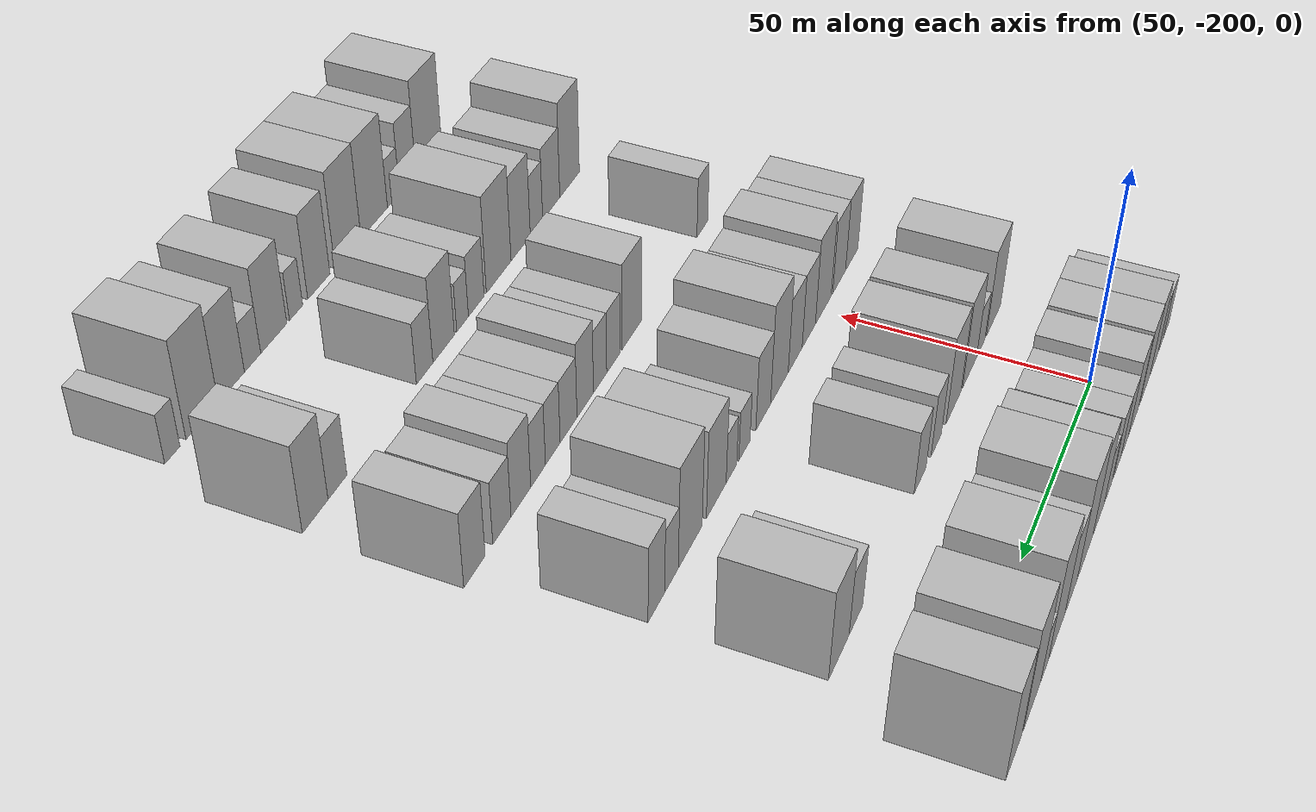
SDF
<sdf version="1.6">
 <world name="default">
  <model name="building_35">
   <static>1</static>
   <pose>50.0000 -221.0468 0 0.000000 0.000000 0.000000</pose>
   <link name="link">
    <pose>0 0 6.00 0 0 0</pose>
    <collision name="collision"><geometry><box><size>20.0000 5.5912 12.0000</size></box></geometry></collision>
    <visual name="visual">
     <cast_shadows>0</cast_shadows>
     <geometry><box><size>20.0000 5.5912 12.0000</size></box></geometry>
     <material>
      <script>
       <uri>model://HANNAS_wall/materials/scripts</uri>
       <uri>model://HANNAS_wall/materials/textures</uri>
       <name>vrc/HANNAS_wall</name>
      </script>
     </material>
    </visual>
   </link>
  </model>
  <model name="building_36">
   <static>1</static>
   <pose>50.0000 -215.8439 0 0.000000 0.000000 0.000000</pose>
   <link name="link">
    <pose>0 0 6.00 0 0 0</pose>
    <collision name="collision"><geometry><box><size>20.0000 4.8145 12.0000</size></box></geometry></collision>
    <visual name="visual">
     <cast_shadows>0</cast_shadows>
     <geometry><box><size>20.0000 4.8145 12.0000</size></box></geometry>
     <material>
      <script>
       <uri>model://HANNAS_wall/materials/scripts</uri>
       <uri>model://HANNAS_wall/materials/textures</uri>
       <name>vrc/HANNAS_wall</name>
      </script>
     </material>
    </visual>
   </link>
  </model>
  <model name="building_37">
   <static>1</static>
   <pose>50.0000 -209.7574 0 0.000000 0.000000 0.000000</pose>
   <link name="link">
    <pose>0 0 9.00 0 0 0</pose>
    <collision name="collision"><geometry><box><size>20.0000 7.3586 18.0000</size></box></geometry></collision>
    <visual name="visual">
     <cast_shadows>0</cast_shadows>
     <geometry><box><size>20.0000 7.3586 18.0000</size></box></geometry>
     <material>
      <script>
       <uri>model://HANNAS_wall/materials/scripts</uri>
       <uri>model://HANNAS_wall/materials/textures</uri>
       <name>vrc/HANNAS_wall</name>
      </script>
     </material>
    </visual>
   </link>
  </model>
  <model name="building_38">
   <static>1</static>
   <pose>50.0000 -201.6873 0 0.000000 0.000000 0.000000</pose>
   <link name="link">
    <pose>0 0 9.00 0 0 0</pose>
    <collision name="collision"><geometry><box><size>20.0000 8.7816 18.0000</size></box></geometry></collision>
    <visual name="visual">
     <cast_shadows>0</cast_shadows>
     <geometry><box><size>20.0000 8.7816 18.0000</size></box></geometry>
     <material>
      <script>
       <uri>model://HANNAS_wall/materials/scripts</uri>
       <uri>model://HANNAS_wall/materials/textures</uri>
       <name>vrc/HANNAS_wall</name>
      </script>
     </material>
    </visual>
   </link>
  </model>
  <model name="building_39">
   <static>1</static>
   <pose>50.0000 -192.1704 0 0.000000 0.000000 0.000000</pose>
   <link name="link">
    <pose>0 0 9.00 0 0 0</pose>
    <collision name="collision"><geometry><box><size>20.0000 8.2521 18.0000</size></box></geometry></collision>
    <visual name="visual">
     <cast_shadows>0</cast_shadows>
     <geometry><box><size>20.0000 8.2521 18.0000</size></box></geometry>
     <material>
      <script>
       <uri>model://HANNAS_wall/materials/scripts</uri>
       <uri>model://HANNAS_wall/materials/textures</uri>
       <name>vrc/HANNAS_wall</name>
      </script>
     </material>
    </visual>
   </link>
  </model>
  <model name="building_40">
   <static>1</static>
   <pose>50.0000 -184.9374 0 0.000000 0.000000 0.000000</pose>
   <link name="link">
    <pose>0 0 7.50 0 0 0</pose>
    <collision name="collision"><geometry><box><size>20.0000 6.2139 15.0000</size></box></geometry></collision>
    <visual name="visual">
     <cast_shadows>0</cast_shadows>
     <geometry><box><size>20.0000 6.2139 15.0000</size></box></geometry>
     <material>
      <script>
       <uri>model://HANNAS_wall/materials/scripts</uri>
       <uri>model://HANNAS_wall/materials/textures</uri>
       <name>vrc/HANNAS_wall</name>
      </script>
     </material>
    </visual>
   </link>
  </model>
  <model name="building_41">
   <static>1</static>
   <pose>50.0000 -178.7144 0 0.000000 0.000000 0.000000</pose>
   <link name="link">
    <pose>0 0 7.50 0 0 0</pose>
    <collision name="collision"><geometry><box><size>20.0000 6.2321 15.0000</size></box></geometry></collision>
    <visual name="visual">
     <cast_shadows>0</cast_shadows>
     <geometry><box><size>20.0000 6.2321 15.0000</size></box></geometry>
     <material>
      <script>
       <uri>model://HANNAS_wall/materials/scripts</uri>
       <uri>model://HANNAS_wall/materials/textures</uri>
       <name>vrc/HANNAS_wall</name>
      </script>
     </material>
    </visual>
   </link>
  </model>
  <model name="building_42">
   <static>1</static>
   <pose>50.0000 -171.6331 0 0.000000 0.000000 0.000000</pose>
   <link name="link">
    <pose>0 0 6.00 0 0 0</pose>
    <collision name="collision"><geometry><box><size>20.0000 5.9306 12.0000</size></box></geometry></collision>
    <visual name="visual">
     <cast_shadows>0</cast_shadows>
     <geometry><box><size>20.0000 5.9306 12.0000</size></box></geometry>
     <material>
      <script>
       <uri>model://HANNAS_wall/materials/scripts</uri>
       <uri>model://HANNAS_wall/materials/textures</uri>
       <name>vrc/HANNAS_wall</name>
      </script>
     </material>
    </visual>
   </link>
  </model>
  <model name="building_43">
   <static>1</static>
   <pose>50.0000 -164.3711 0 0.000000 0.000000 0.000000</pose>
   <link name="link">
    <pose>0 0 10.50 0 0 0</pose>
    <collision name="collision"><geometry><box><size>20.0000 8.5934 21.0000</size></box></geometry></collision>
    <visual name="visual">
     <cast_shadows>0</cast_shadows>
     <geometry><box><size>20.0000 8.5934 21.0000</size></box></geometry>
     <material>
      <script>
       <uri>model://HANNAS_wall/materials/scripts</uri>
       <uri>model://HANNAS_wall/materials/textures</uri>
       <name>vrc/HANNAS_wall</name>
      </script>
     </material>
    </visual>
   </link>
  </model>
  <model name="building_44">
   <static>1</static>
   <pose>50.0000 -154.4424 0 0.000000 0.000000 0.000000</pose>
   <link name="link">
    <pose>0 0 12.00 0 0 0</pose>
    <collision name="collision"><geometry><box><size>20.0000 11.2641 24.0000</size></box></geometry></collision>
    <visual name="visual">
     <cast_shadows>0</cast_shadows>
     <geometry><box><size>20.0000 11.2641 24.0000</size></box></geometry>
     <material>
      <script>
       <uri>model://HANNAS_wall/materials/scripts</uri>
       <uri>model://HANNAS_wall/materials/textures</uri>
       <name>vrc/HANNAS_wall</name>
      </script>
     </material>
    </visual>
   </link>
  </model>
  <model name="building_45">
   <static>1</static>
   <pose>50.0000 -144.5489 0 0.000000 0.000000 0.000000</pose>
   <link name="link">
    <pose>0 0 9.00 0 0 0</pose>
    <collision name="collision"><geometry><box><size>20.0000 8.5229 18.0000</size></box></geometry></collision>
    <visual name="visual">
     <cast_shadows>0</cast_shadows>
     <geometry><box><size>20.0000 8.5229 18.0000</size></box></geometry>
     <material>
      <script>
       <uri>model://HANNAS_wall/materials/scripts</uri>
       <uri>model://HANNAS_wall/materials/textures</uri>
       <name>vrc/HANNAS_wall</name>
      </script>
     </material>
    </visual>
   </link>
  </model>
  <model name="building_46">
   <static>1</static>
   <pose>50.0000 -134.7426 0 0.000000 0.000000 0.000000</pose>
   <link name="link">
    <pose>0 0 12.00 0 0 0</pose>
    <collision name="collision"><geometry><box><size>20.0000 11.0898 24.0000</size></box></geometry></collision>
    <visual name="visual">
     <cast_shadows>0</cast_shadows>
     <geometry><box><size>20.0000 11.0898 24.0000</size></box></geometry>
     <material>
      <script>
       <uri>model://HANNAS_wall/materials/scripts</uri>
       <uri>model://HANNAS_wall/materials/textures</uri>
       <name>vrc/HANNAS_wall</name>
      </script>
     </material>
    </visual>
   </link>
  </model>
  <model name="building_47">
   <static>1</static>
   <pose>50.0000 -126.7823 0 0.000000 0.000000 0.000000</pose>
   <link name="link">
    <pose>0 0 6.00 0 0 0</pose>
    <collision name="collision"><geometry><box><size>20.0000 4.8309 12.0000</size></box></geometry></collision>
    <visual name="visual">
     <cast_shadows>0</cast_shadows>
     <geometry><box><size>20.0000 4.8309 12.0000</size></box></geometry>
     <material>
      <script>
       <uri>model://HANNAS_wall/materials/scripts</uri>
       <uri>model://HANNAS_wall/materials/textures</uri>
       <name>vrc/HANNAS_wall</name>
      </script>
     </material>
    </visual>
   </link>
  </model>
  <model name="building_48">
   <static>1</static>
   <pose>50.0000 -118.9550 0 0.000000 0.000000 0.000000</pose>
   <link name="link">
    <pose>0 0 12.00 0 0 0</pose>
    <collision name="collision"><geometry><box><size>20.0000 10.8237 24.0000</size></box></geometry></collision>
    <visual name="visual">
     <cast_shadows>0</cast_shadows>
     <geometry><box><size>20.0000 10.8237 24.0000</size></box></geometry>
     <material>
      <script>
       <uri>model://HANNAS_wall/materials/scripts</uri>
       <uri>model://HANNAS_wall/materials/textures</uri>
       <name>vrc/HANNAS_wall</name>
      </script>
     </material>
    </visual>
   </link>
  </model>
  <model name="building_49">
   <static>1</static>
   <pose>50.0000 -107.7696 0 0.000000 0.000000 0.000000</pose>
   <link name="link">
    <pose>0 0 10.50 0 0 0</pose>
    <collision name="collision"><geometry><box><size>20.0000 9.5471 21.0000</size></box></geometry></collision>
    <visual name="visual">
     <cast_shadows>0</cast_shadows>
     <geometry><box><size>20.0000 9.5471 21.0000</size></box></geometry>
     <material>
      <script>
       <uri>model://HANNAS_wall/materials/scripts</uri>
       <uri>model://HANNAS_wall/materials/textures</uri>
       <name>vrc/HANNAS_wall</name>
      </script>
     </material>
    </visual>
   </link>
  </model>
  <model name="building_161">
   <static>1</static>
   <pose>82.0000 -210.3551 0 0.000000 0.000000 0.000000</pose>
   <link name="link">
    <pose>0 0 10.50 0 0 0</pose>
    <collision name="collision"><geometry><box><size>20.0000 10.3191 21.0000</size></box></geometry></collision>
    <visual name="visual">
     <cast_shadows>0</cast_shadows>
     <geometry><box><size>20.0000 10.3191 21.0000</size></box></geometry>
     <material>
      <script>
       <uri>model://HANNAS_wall/materials/scripts</uri>
       <uri>model://HANNAS_wall/materials/textures</uri>
       <name>vrc/HANNAS_wall</name>
      </script>
     </material>
    </visual>
   </link>
  </model>
  <model name="building_162">
   <static>1</static>
   <pose>82.0000 -201.2394 0 0.000000 0.000000 0.000000</pose>
   <link name="link">
    <pose>0 0 6.00 0 0 0</pose>
    <collision name="collision"><geometry><box><size>20.0000 5.9122 12.0000</size></box></geometry></collision>
    <visual name="visual">
     <cast_shadows>0</cast_shadows>
     <geometry><box><size>20.0000 5.9122 12.0000</size></box></geometry>
     <material>
      <script>
       <uri>model://HANNAS_wall/materials/scripts</uri>
       <uri>model://HANNAS_wall/materials/textures</uri>
       <name>vrc/HANNAS_wall</name>
      </script>
     </material>
    </visual>
   </link>
  </model>
  <model name="building_163">
   <static>1</static>
   <pose>82.0000 -193.4736 0 0.000000 0.000000 0.000000</pose>
   <link name="link">
    <pose>0 0 10.50 0 0 0</pose>
    <collision name="collision"><geometry><box><size>20.0000 9.6196 21.0000</size></box></geometry></collision>
    <visual name="visual">
     <cast_shadows>0</cast_shadows>
     <geometry><box><size>20.0000 9.6196 21.0000</size></box></geometry>
     <material>
      <script>
       <uri>model://HANNAS_wall/materials/scripts</uri>
       <uri>model://HANNAS_wall/materials/textures</uri>
       <name>vrc/HANNAS_wall</name>
      </script>
     </material>
    </visual>
   </link>
  </model>
  <model name="building_164">
   <static>1</static>
   <pose>82.0000 -182.7135 0 0.000000 0.000000 0.000000</pose>
   <link name="link">
    <pose>0 0 10.50 0 0 0</pose>
    <collision name="collision"><geometry><box><size>20.0000 9.9006 21.0000</size></box></geometry></collision>
    <visual name="visual">
     <cast_shadows>0</cast_shadows>
     <geometry><box><size>20.0000 9.9006 21.0000</size></box></geometry>
     <material>
      <script>
       <uri>model://HANNAS_wall/materials/scripts</uri>
       <uri>model://HANNAS_wall/materials/textures</uri>
       <name>vrc/HANNAS_wall</name>
      </script>
     </material>
    </visual>
   </link>
  </model>
  <model name="building_165">
   <static>1</static>
   <pose>82.0000 -171.4814 0 0.000000 0.000000 0.000000</pose>
   <link name="link">
    <pose>0 0 7.50 0 0 0</pose>
    <collision name="collision"><geometry><box><size>20.0000 6.5635 15.0000</size></box></geometry></collision>
    <visual name="visual">
     <cast_shadows>0</cast_shadows>
     <geometry><box><size>20.0000 6.5635 15.0000</size></box></geometry>
     <material>
      <script>
       <uri>model://HANNAS_wall/materials/scripts</uri>
       <uri>model://HANNAS_wall/materials/textures</uri>
       <name>vrc/HANNAS_wall</name>
      </script>
     </material>
    </visual>
   </link>
  </model>
  <model name="building_166">
   <static>1</static>
   <pose>82.0000 -161.5346 0 0.000000 0.000000 0.000000</pose>
   <link name="link">
    <pose>0 0 7.50 0 0 0</pose>
    <collision name="collision"><geometry><box><size>20.0000 7.3302 15.0000</size></box></geometry></collision>
    <visual name="visual">
     <cast_shadows>0</cast_shadows>
     <geometry><box><size>20.0000 7.3302 15.0000</size></box></geometry>
     <material>
      <script>
       <uri>model://HANNAS_wall/materials/scripts</uri>
       <uri>model://HANNAS_wall/materials/textures</uri>
       <name>vrc/HANNAS_wall</name>
      </script>
     </material>
    </visual>
   </link>
  </model>
  <model name="building_167">
   <static>1</static>
   <pose>82.0000 -125.1400 0 0.000000 0.000000 0.000000</pose>
   <link name="link">
    <pose>0 0 7.50 0 0 0</pose>
    <collision name="collision"><geometry><box><size>20.0000 7.1531 15.0000</size></box></geometry></collision>
    <visual name="visual">
     <cast_shadows>0</cast_shadows>
     <geometry><box><size>20.0000 7.1531 15.0000</size></box></geometry>
     <material>
      <script>
       <uri>model://HANNAS_wall/materials/scripts</uri>
       <uri>model://HANNAS_wall/materials/textures</uri>
       <name>vrc/HANNAS_wall</name>
      </script>
     </material>
    </visual>
   </link>
  </model>
  <model name="building_168">
   <static>1</static>
   <pose>82.0000 -116.3396 0 0.000000 0.000000 0.000000</pose>
   <link name="link">
    <pose>0 0 10.50 0 0 0</pose>
    <collision name="collision"><geometry><box><size>20.0000 10.4476 21.0000</size></box></geometry></collision>
    <visual name="visual">
     <cast_shadows>0</cast_shadows>
     <geometry><box><size>20.0000 10.4476 21.0000</size></box></geometry>
     <material>
      <script>
       <uri>model://HANNAS_wall/materials/scripts</uri>
       <uri>model://HANNAS_wall/materials/textures</uri>
       <name>vrc/HANNAS_wall</name>
      </script>
     </material>
    </visual>
   </link>
  </model>
  <model name="building_272">
   <static>1</static>
   <pose>114.0000 -217.8132 0 0.000000 0.000000 0.000000</pose>
   <link name="link">
    <pose>0 0 9.00 0 0 0</pose>
    <collision name="collision"><geometry><box><size>20.0000 7.8321 18.0000</size></box></geometry></collision>
    <visual name="visual">
     <cast_shadows>0</cast_shadows>
     <geometry><box><size>20.0000 7.8321 18.0000</size></box></geometry>
     <material>
      <script>
       <uri>model://HANNAS_wall/materials/scripts</uri>
       <uri>model://HANNAS_wall/materials/textures</uri>
       <name>vrc/HANNAS_wall</name>
      </script>
     </material>
    </visual>
   </link>
  </model>
  <model name="building_273">
   <static>1</static>
   <pose>114.0000 -209.9239 0 0.000000 0.000000 0.000000</pose>
   <link name="link">
    <pose>0 0 9.00 0 0 0</pose>
    <collision name="collision"><geometry><box><size>20.0000 7.9464 18.0000</size></box></geometry></collision>
    <visual name="visual">
     <cast_shadows>0</cast_shadows>
     <geometry><box><size>20.0000 7.9464 18.0000</size></box></geometry>
     <material>
      <script>
       <uri>model://HANNAS_wall/materials/scripts</uri>
       <uri>model://HANNAS_wall/materials/textures</uri>
       <name>vrc/HANNAS_wall</name>
      </script>
     </material>
    </visual>
   </link>
  </model>
  <model name="building_274">
   <static>1</static>
   <pose>114.0000 -200.2239 0 0.000000 0.000000 0.000000</pose>
   <link name="link">
    <pose>0 0 10.50 0 0 0</pose>
    <collision name="collision"><geometry><box><size>20.0000 9.4536 21.0000</size></box></geometry></collision>
    <visual name="visual">
     <cast_shadows>0</cast_shadows>
     <geometry><box><size>20.0000 9.4536 21.0000</size></box></geometry>
     <material>
      <script>
       <uri>model://HANNAS_wall/materials/scripts</uri>
       <uri>model://HANNAS_wall/materials/textures</uri>
       <name>vrc/HANNAS_wall</name>
      </script>
     </material>
    </visual>
   </link>
  </model>
  <model name="building_275">
   <static>1</static>
   <pose>114.0000 -191.6188 0 0.000000 0.000000 0.000000</pose>
   <link name="link">
    <pose>0 0 9.00 0 0 0</pose>
    <collision name="collision"><geometry><box><size>20.0000 7.7567 18.0000</size></box></geometry></collision>
    <visual name="visual">
     <cast_shadows>0</cast_shadows>
     <geometry><box><size>20.0000 7.7567 18.0000</size></box></geometry>
     <material>
      <script>
       <uri>model://HANNAS_wall/materials/scripts</uri>
       <uri>model://HANNAS_wall/materials/textures</uri>
       <name>vrc/HANNAS_wall</name>
      </script>
     </material>
    </visual>
   </link>
  </model>
  <model name="building_276">
   <static>1</static>
   <pose>114.0000 -183.7660 0 0.000000 0.000000 0.000000</pose>
   <link name="link">
    <pose>0 0 9.00 0 0 0</pose>
    <collision name="collision"><geometry><box><size>20.0000 7.9490 18.0000</size></box></geometry></collision>
    <visual name="visual">
     <cast_shadows>0</cast_shadows>
     <geometry><box><size>20.0000 7.9490 18.0000</size></box></geometry>
     <material>
      <script>
       <uri>model://HANNAS_wall/materials/scripts</uri>
       <uri>model://HANNAS_wall/materials/textures</uri>
       <name>vrc/HANNAS_wall</name>
      </script>
     </material>
    </visual>
   </link>
  </model>
  <model name="building_277">
   <static>1</static>
   <pose>114.0000 -174.9407 0 0.000000 0.000000 0.000000</pose>
   <link name="link">
    <pose>0 0 12.00 0 0 0</pose>
    <collision name="collision"><geometry><box><size>20.0000 9.7017 24.0000</size></box></geometry></collision>
    <visual name="visual">
     <cast_shadows>0</cast_shadows>
     <geometry><box><size>20.0000 9.7017 24.0000</size></box></geometry>
     <material>
      <script>
       <uri>model://HANNAS_wall/materials/scripts</uri>
       <uri>model://HANNAS_wall/materials/textures</uri>
       <name>vrc/HANNAS_wall</name>
      </script>
     </material>
    </visual>
   </link>
  </model>
  <model name="building_278">
   <static>1</static>
   <pose>114.0000 -166.1521 0 0.000000 0.000000 0.000000</pose>
   <link name="link">
    <pose>0 0 9.00 0 0 0</pose>
    <collision name="collision"><geometry><box><size>20.0000 7.8755 18.0000</size></box></geometry></collision>
    <visual name="visual">
     <cast_shadows>0</cast_shadows>
     <geometry><box><size>20.0000 7.8755 18.0000</size></box></geometry>
     <material>
      <script>
       <uri>model://HANNAS_wall/materials/scripts</uri>
       <uri>model://HANNAS_wall/materials/textures</uri>
       <name>vrc/HANNAS_wall</name>
      </script>
     </material>
    </visual>
   </link>
  </model>
  <model name="building_279">
   <static>1</static>
   <pose>114.0000 -156.3074 0 0.000000 0.000000 0.000000</pose>
   <link name="link">
    <pose>0 0 6.00 0 0 0</pose>
    <collision name="collision"><geometry><box><size>20.0000 5.8138 12.0000</size></box></geometry></collision>
    <visual name="visual">
     <cast_shadows>0</cast_shadows>
     <geometry><box><size>20.0000 5.8138 12.0000</size></box></geometry>
     <material>
      <script>
       <uri>model://HANNAS_wall/materials/scripts</uri>
       <uri>model://HANNAS_wall/materials/textures</uri>
       <name>vrc/HANNAS_wall</name>
      </script>
     </material>
    </visual>
   </link>
  </model>
  <model name="building_280">
   <static>1</static>
   <pose>114.0000 -149.7350 0 0.000000 0.000000 0.000000</pose>
   <link name="link">
    <pose>0 0 6.00 0 0 0</pose>
    <collision name="collision"><geometry><box><size>20.0000 5.3311 12.0000</size></box></geometry></collision>
    <visual name="visual">
     <cast_shadows>0</cast_shadows>
     <geometry><box><size>20.0000 5.3311 12.0000</size></box></geometry>
     <material>
      <script>
       <uri>model://HANNAS_wall/materials/scripts</uri>
       <uri>model://HANNAS_wall/materials/textures</uri>
       <name>vrc/HANNAS_wall</name>
      </script>
     </material>
    </visual>
   </link>
  </model>
  <model name="building_281">
   <static>1</static>
   <pose>114.0000 -142.2598 0 0.000000 0.000000 0.000000</pose>
   <link name="link">
    <pose>0 0 10.50 0 0 0</pose>
    <collision name="collision"><geometry><box><size>20.0000 9.6193 21.0000</size></box></geometry></collision>
    <visual name="visual">
     <cast_shadows>0</cast_shadows>
     <geometry><box><size>20.0000 9.6193 21.0000</size></box></geometry>
     <material>
      <script>
       <uri>model://HANNAS_wall/materials/scripts</uri>
       <uri>model://HANNAS_wall/materials/textures</uri>
       <name>vrc/HANNAS_wall</name>
      </script>
     </material>
    </visual>
   </link>
  </model>
  <model name="building_282">
   <static>1</static>
   <pose>114.0000 -129.9296 0 0.000000 0.000000 0.000000</pose>
   <link name="link">
    <pose>0 0 12.00 0 0 0</pose>
    <collision name="collision"><geometry><box><size>20.0000 11.0411 24.0000</size></box></geometry></collision>
    <visual name="visual">
     <cast_shadows>0</cast_shadows>
     <geometry><box><size>20.0000 11.0411 24.0000</size></box></geometry>
     <material>
      <script>
       <uri>model://HANNAS_wall/materials/scripts</uri>
       <uri>model://HANNAS_wall/materials/textures</uri>
       <name>vrc/HANNAS_wall</name>
      </script>
     </material>
    </visual>
   </link>
  </model>
  <model name="building_283">
   <static>1</static>
   <pose>114.0000 -121.3444 0 0.000000 0.000000 0.000000</pose>
   <link name="link">
    <pose>0 0 7.50 0 0 0</pose>
    <collision name="collision"><geometry><box><size>20.0000 6.1294 15.0000</size></box></geometry></collision>
    <visual name="visual">
     <cast_shadows>0</cast_shadows>
     <geometry><box><size>20.0000 6.1294 15.0000</size></box></geometry>
     <material>
      <script>
       <uri>model://HANNAS_wall/materials/scripts</uri>
       <uri>model://HANNAS_wall/materials/textures</uri>
       <name>vrc/HANNAS_wall</name>
      </script>
     </material>
    </visual>
   </link>
  </model>
  <model name="building_284">
   <static>1</static>
   <pose>114.0000 -114.6288 0 0.000000 0.000000 0.000000</pose>
   <link name="link">
    <pose>0 0 9.00 0 0 0</pose>
    <collision name="collision"><geometry><box><size>20.0000 7.3018 18.0000</size></box></geometry></collision>
    <visual name="visual">
     <cast_shadows>0</cast_shadows>
     <geometry><box><size>20.0000 7.3018 18.0000</size></box></geometry>
     <material>
      <script>
       <uri>model://HANNAS_wall/materials/scripts</uri>
       <uri>model://HANNAS_wall/materials/textures</uri>
       <name>vrc/HANNAS_wall</name>
      </script>
     </material>
    </visual>
   </link>
  </model>
  <model name="building_390">
   <static>1</static>
   <pose>146.0000 -215.3857 0 0.000000 0.000000 0.000000</pose>
   <link name="link">
    <pose>0 0 7.50 0 0 0</pose>
    <collision name="collision"><geometry><box><size>20.0000 6.0365 15.0000</size></box></geometry></collision>
    <visual name="visual">
     <cast_shadows>0</cast_shadows>
     <geometry><box><size>20.0000 6.0365 15.0000</size></box></geometry>
     <material>
      <script>
       <uri>model://HANNAS_wall/materials/scripts</uri>
       <uri>model://HANNAS_wall/materials/textures</uri>
       <name>vrc/HANNAS_wall</name>
      </script>
     </material>
    </visual>
   </link>
  </model>
  <model name="building_391">
   <static>1</static>
   <pose>146.0000 -178.2285 0 0.000000 0.000000 0.000000</pose>
   <link name="link">
    <pose>0 0 10.50 0 0 0</pose>
    <collision name="collision"><geometry><box><size>20.0000 9.4259 21.0000</size></box></geometry></collision>
    <visual name="visual">
     <cast_shadows>0</cast_shadows>
     <geometry><box><size>20.0000 9.4259 21.0000</size></box></geometry>
     <material>
      <script>
       <uri>model://HANNAS_wall/materials/scripts</uri>
       <uri>model://HANNAS_wall/materials/textures</uri>
       <name>vrc/HANNAS_wall</name>
      </script>
     </material>
    </visual>
   </link>
  </model>
  <model name="building_392">
   <static>1</static>
   <pose>146.0000 -169.3140 0 0.000000 0.000000 0.000000</pose>
   <link name="link">
    <pose>0 0 7.50 0 0 0</pose>
    <collision name="collision"><geometry><box><size>20.0000 6.4030 15.0000</size></box></geometry></collision>
    <visual name="visual">
     <cast_shadows>0</cast_shadows>
     <geometry><box><size>20.0000 6.4030 15.0000</size></box></geometry>
     <material>
      <script>
       <uri>model://HANNAS_wall/materials/scripts</uri>
       <uri>model://HANNAS_wall/materials/textures</uri>
       <name>vrc/HANNAS_wall</name>
      </script>
     </material>
    </visual>
   </link>
  </model>
  <model name="building_393">
   <static>1</static>
   <pose>146.0000 -163.0131 0 0.000000 0.000000 0.000000</pose>
   <link name="link">
    <pose>0 0 7.50 0 0 0</pose>
    <collision name="collision"><geometry><box><size>20.0000 6.1986 15.0000</size></box></geometry></collision>
    <visual name="visual">
     <cast_shadows>0</cast_shadows>
     <geometry><box><size>20.0000 6.1986 15.0000</size></box></geometry>
     <material>
      <script>
       <uri>model://HANNAS_wall/materials/scripts</uri>
       <uri>model://HANNAS_wall/materials/textures</uri>
       <name>vrc/HANNAS_wall</name>
      </script>
     </material>
    </visual>
   </link>
  </model>
  <model name="building_394">
   <static>1</static>
   <pose>146.0000 -156.1457 0 0.000000 0.000000 0.000000</pose>
   <link name="link">
    <pose>0 0 9.00 0 0 0</pose>
    <collision name="collision"><geometry><box><size>20.0000 7.5362 18.0000</size></box></geometry></collision>
    <visual name="visual">
     <cast_shadows>0</cast_shadows>
     <geometry><box><size>20.0000 7.5362 18.0000</size></box></geometry>
     <material>
      <script>
       <uri>model://HANNAS_wall/materials/scripts</uri>
       <uri>model://HANNAS_wall/materials/textures</uri>
       <name>vrc/HANNAS_wall</name>
      </script>
     </material>
    </visual>
   </link>
  </model>
  <model name="building_395">
   <static>1</static>
   <pose>146.0000 -148.6356 0 0.000000 0.000000 0.000000</pose>
   <link name="link">
    <pose>0 0 7.50 0 0 0</pose>
    <collision name="collision"><geometry><box><size>20.0000 7.4842 15.0000</size></box></geometry></collision>
    <visual name="visual">
     <cast_shadows>0</cast_shadows>
     <geometry><box><size>20.0000 7.4842 15.0000</size></box></geometry>
     <material>
      <script>
       <uri>model://HANNAS_wall/materials/scripts</uri>
       <uri>model://HANNAS_wall/materials/textures</uri>
       <name>vrc/HANNAS_wall</name>
      </script>
     </material>
    </visual>
   </link>
  </model>
  <model name="building_396">
   <static>1</static>
   <pose>146.0000 -141.7127 0 0.000000 0.000000 0.000000</pose>
   <link name="link">
    <pose>0 0 7.50 0 0 0</pose>
    <collision name="collision"><geometry><box><size>20.0000 6.3615 15.0000</size></box></geometry></collision>
    <visual name="visual">
     <cast_shadows>0</cast_shadows>
     <geometry><box><size>20.0000 6.3615 15.0000</size></box></geometry>
     <material>
      <script>
       <uri>model://HANNAS_wall/materials/scripts</uri>
       <uri>model://HANNAS_wall/materials/textures</uri>
       <name>vrc/HANNAS_wall</name>
      </script>
     </material>
    </visual>
   </link>
  </model>
  <model name="building_397">
   <static>1</static>
   <pose>146.0000 -135.4174 0 0.000000 0.000000 0.000000</pose>
   <link name="link">
    <pose>0 0 7.50 0 0 0</pose>
    <collision name="collision"><geometry><box><size>20.0000 6.2291 15.0000</size></box></geometry></collision>
    <visual name="visual">
     <cast_shadows>0</cast_shadows>
     <geometry><box><size>20.0000 6.2291 15.0000</size></box></geometry>
     <material>
      <script>
       <uri>model://HANNAS_wall/materials/scripts</uri>
       <uri>model://HANNAS_wall/materials/textures</uri>
       <name>vrc/HANNAS_wall</name>
      </script>
     </material>
    </visual>
   </link>
  </model>
  <model name="building_398">
   <static>1</static>
   <pose>146.0000 -128.2302 0 0.000000 0.000000 0.000000</pose>
   <link name="link">
    <pose>0 0 9.00 0 0 0</pose>
    <collision name="collision"><geometry><box><size>20.0000 8.1455 18.0000</size></box></geometry></collision>
    <visual name="visual">
     <cast_shadows>0</cast_shadows>
     <geometry><box><size>20.0000 8.1455 18.0000</size></box></geometry>
     <material>
      <script>
       <uri>model://HANNAS_wall/materials/scripts</uri>
       <uri>model://HANNAS_wall/materials/textures</uri>
       <name>vrc/HANNAS_wall</name>
      </script>
     </material>
    </visual>
   </link>
  </model>
  <model name="building_399">
   <static>1</static>
   <pose>146.0000 -120.5197 0 0.000000 0.000000 0.000000</pose>
   <link name="link">
    <pose>0 0 7.50 0 0 0</pose>
    <collision name="collision"><geometry><box><size>20.0000 7.2755 15.0000</size></box></geometry></collision>
    <visual name="visual">
     <cast_shadows>0</cast_shadows>
     <geometry><box><size>20.0000 7.2755 15.0000</size></box></geometry>
     <material>
      <script>
       <uri>model://HANNAS_wall/materials/scripts</uri>
       <uri>model://HANNAS_wall/materials/textures</uri>
       <name>vrc/HANNAS_wall</name>
      </script>
     </material>
    </visual>
   </link>
  </model>
  <model name="building_400">
   <static>1</static>
   <pose>146.0000 -109.8017 0 0.000000 0.000000 0.000000</pose>
   <link name="link">
    <pose>0 0 9.00 0 0 0</pose>
    <collision name="collision"><geometry><box><size>20.0000 8.1604 18.0000</size></box></geometry></collision>
    <visual name="visual">
     <cast_shadows>0</cast_shadows>
     <geometry><box><size>20.0000 8.1604 18.0000</size></box></geometry>
     <material>
      <script>
       <uri>model://HANNAS_wall/materials/scripts</uri>
       <uri>model://HANNAS_wall/materials/textures</uri>
       <name>vrc/HANNAS_wall</name>
      </script>
     </material>
    </visual>
   </link>
  </model>
  <model name="building_509">
   <static>1</static>
   <pose>178.0000 -218.6854 0 0.000000 0.000000 0.000000</pose>
   <link name="link">
    <pose>0 0 12.00 0 0 0</pose>
    <collision name="collision"><geometry><box><size>20.0000 10.0352 24.0000</size></box></geometry></collision>
    <visual name="visual">
     <cast_shadows>0</cast_shadows>
     <geometry><box><size>20.0000 10.0352 24.0000</size></box></geometry>
     <material>
      <script>
       <uri>model://HANNAS_wall/materials/scripts</uri>
       <uri>model://HANNAS_wall/materials/textures</uri>
       <name>vrc/HANNAS_wall</name>
      </script>
     </material>
    </visual>
   </link>
  </model>
  <model name="building_510">
   <static>1</static>
   <pose>178.0000 -209.4074 0 0.000000 0.000000 0.000000</pose>
   <link name="link">
    <pose>0 0 9.00 0 0 0</pose>
    <collision name="collision"><geometry><box><size>20.0000 8.5207 18.0000</size></box></geometry></collision>
    <visual name="visual">
     <cast_shadows>0</cast_shadows>
     <geometry><box><size>20.0000 8.5207 18.0000</size></box></geometry>
     <material>
      <script>
       <uri>model://HANNAS_wall/materials/scripts</uri>
       <uri>model://HANNAS_wall/materials/textures</uri>
       <name>vrc/HANNAS_wall</name>
      </script>
     </material>
    </visual>
   </link>
  </model>
  <model name="building_511">
   <static>1</static>
   <pose>178.0000 -202.1336 0 0.000000 0.000000 0.000000</pose>
   <link name="link">
    <pose>0 0 7.50 0 0 0</pose>
    <collision name="collision"><geometry><box><size>20.0000 6.0268 15.0000</size></box></geometry></collision>
    <visual name="visual">
     <cast_shadows>0</cast_shadows>
     <geometry><box><size>20.0000 6.0268 15.0000</size></box></geometry>
     <material>
      <script>
       <uri>model://HANNAS_wall/materials/scripts</uri>
       <uri>model://HANNAS_wall/materials/textures</uri>
       <name>vrc/HANNAS_wall</name>
      </script>
     </material>
    </visual>
   </link>
  </model>
  <model name="building_512">
   <static>1</static>
   <pose>178.0000 -194.5475 0 0.000000 0.000000 0.000000</pose>
   <link name="link">
    <pose>0 0 10.50 0 0 0</pose>
    <collision name="collision"><geometry><box><size>20.0000 9.1454 21.0000</size></box></geometry></collision>
    <visual name="visual">
     <cast_shadows>0</cast_shadows>
     <geometry><box><size>20.0000 9.1454 21.0000</size></box></geometry>
     <material>
      <script>
       <uri>model://HANNAS_wall/materials/scripts</uri>
       <uri>model://HANNAS_wall/materials/textures</uri>
       <name>vrc/HANNAS_wall</name>
      </script>
     </material>
    </visual>
   </link>
  </model>
  <model name="building_513">
   <static>1</static>
   <pose>178.0000 -184.2959 0 0.000000 0.000000 0.000000</pose>
   <link name="link">
    <pose>0 0 12.00 0 0 0</pose>
    <collision name="collision"><geometry><box><size>20.0000 11.3578 24.0000</size></box></geometry></collision>
    <visual name="visual">
     <cast_shadows>0</cast_shadows>
     <geometry><box><size>20.0000 11.3578 24.0000</size></box></geometry>
     <material>
      <script>
       <uri>model://HANNAS_wall/materials/scripts</uri>
       <uri>model://HANNAS_wall/materials/textures</uri>
       <name>vrc/HANNAS_wall</name>
      </script>
     </material>
    </visual>
   </link>
  </model>
  <model name="building_514">
   <static>1</static>
   <pose>178.0000 -174.1513 0 0.000000 0.000000 0.000000</pose>
   <link name="link">
    <pose>0 0 7.50 0 0 0</pose>
    <collision name="collision"><geometry><box><size>20.0000 6.9316 15.0000</size></box></geometry></collision>
    <visual name="visual">
     <cast_shadows>0</cast_shadows>
     <geometry><box><size>20.0000 6.9316 15.0000</size></box></geometry>
     <material>
      <script>
       <uri>model://HANNAS_wall/materials/scripts</uri>
       <uri>model://HANNAS_wall/materials/textures</uri>
       <name>vrc/HANNAS_wall</name>
      </script>
     </material>
    </visual>
   </link>
  </model>
  <model name="building_515">
   <static>1</static>
   <pose>178.0000 -168.1469 0 0.000000 0.000000 0.000000</pose>
   <link name="link">
    <pose>0 0 6.00 0 0 0</pose>
    <collision name="collision"><geometry><box><size>20.0000 5.0771 12.0000</size></box></geometry></collision>
    <visual name="visual">
     <cast_shadows>0</cast_shadows>
     <geometry><box><size>20.0000 5.0771 12.0000</size></box></geometry>
     <material>
      <script>
       <uri>model://HANNAS_wall/materials/scripts</uri>
       <uri>model://HANNAS_wall/materials/textures</uri>
       <name>vrc/HANNAS_wall</name>
      </script>
     </material>
    </visual>
   </link>
  </model>
  <model name="building_516">
   <static>1</static>
   <pose>178.0000 -160.0823 0 0.000000 0.000000 0.000000</pose>
   <link name="link">
    <pose>0 0 10.50 0 0 0</pose>
    <collision name="collision"><geometry><box><size>20.0000 9.0521 21.0000</size></box></geometry></collision>
    <visual name="visual">
     <cast_shadows>0</cast_shadows>
     <geometry><box><size>20.0000 9.0521 21.0000</size></box></geometry>
     <material>
      <script>
       <uri>model://HANNAS_wall/materials/scripts</uri>
       <uri>model://HANNAS_wall/materials/textures</uri>
       <name>vrc/HANNAS_wall</name>
      </script>
     </material>
    </visual>
   </link>
  </model>
  <model name="building_517">
   <static>1</static>
   <pose>178.0000 -152.1755 0 0.000000 0.000000 0.000000</pose>
   <link name="link">
    <pose>0 0 7.50 0 0 0</pose>
    <collision name="collision"><geometry><box><size>20.0000 6.7616 15.0000</size></box></geometry></collision>
    <visual name="visual">
     <cast_shadows>0</cast_shadows>
     <geometry><box><size>20.0000 6.7616 15.0000</size></box></geometry>
     <material>
      <script>
       <uri>model://HANNAS_wall/materials/scripts</uri>
       <uri>model://HANNAS_wall/materials/textures</uri>
       <name>vrc/HANNAS_wall</name>
      </script>
     </material>
    </visual>
   </link>
  </model>
  <model name="building_518">
   <static>1</static>
   <pose>178.0000 -118.5468 0 0.000000 0.000000 0.000000</pose>
   <link name="link">
    <pose>0 0 7.50 0 0 0</pose>
    <collision name="collision"><geometry><box><size>20.0000 6.8319 15.0000</size></box></geometry></collision>
    <visual name="visual">
     <cast_shadows>0</cast_shadows>
     <geometry><box><size>20.0000 6.8319 15.0000</size></box></geometry>
     <material>
      <script>
       <uri>model://HANNAS_wall/materials/scripts</uri>
       <uri>model://HANNAS_wall/materials/textures</uri>
       <name>vrc/HANNAS_wall</name>
      </script>
     </material>
    </visual>
   </link>
  </model>
  <model name="building_519">
   <static>1</static>
   <pose>178.0000 -110.6111 0 0.000000 0.000000 0.000000</pose>
   <link name="link">
    <pose>0 0 10.50 0 0 0</pose>
    <collision name="collision"><geometry><box><size>20.0000 9.0394 21.0000</size></box></geometry></collision>
    <visual name="visual">
     <cast_shadows>0</cast_shadows>
     <geometry><box><size>20.0000 9.0394 21.0000</size></box></geometry>
     <material>
      <script>
       <uri>model://HANNAS_wall/materials/scripts</uri>
       <uri>model://HANNAS_wall/materials/textures</uri>
       <name>vrc/HANNAS_wall</name>
      </script>
     </material>
    </visual>
   </link>
  </model>
  <model name="building_622">
   <static>1</static>
   <pose>210.0000 -214.8806 0 0.000000 0.000000 0.000000</pose>
   <link name="link">
    <pose>0 0 12.00 0 0 0</pose>
    <collision name="collision"><geometry><box><size>20.0000 11.9669 24.0000</size></box></geometry></collision>
    <visual name="visual">
     <cast_shadows>0</cast_shadows>
     <geometry><box><size>20.0000 11.9669 24.0000</size></box></geometry>
     <material>
      <script>
       <uri>model://HANNAS_wall/materials/scripts</uri>
       <uri>model://HANNAS_wall/materials/textures</uri>
       <name>vrc/HANNAS_wall</name>
      </script>
     </material>
    </visual>
   </link>
  </model>
  <model name="building_623">
   <static>1</static>
   <pose>210.0000 -205.1793 0 0.000000 0.000000 0.000000</pose>
   <link name="link">
    <pose>0 0 9.00 0 0 0</pose>
    <collision name="collision"><geometry><box><size>20.0000 7.4357 18.0000</size></box></geometry></collision>
    <visual name="visual">
     <cast_shadows>0</cast_shadows>
     <geometry><box><size>20.0000 7.4357 18.0000</size></box></geometry>
     <material>
      <script>
       <uri>model://HANNAS_wall/materials/scripts</uri>
       <uri>model://HANNAS_wall/materials/textures</uri>
       <name>vrc/HANNAS_wall</name>
      </script>
     </material>
    </visual>
   </link>
  </model>
  <model name="building_624">
   <static>1</static>
   <pose>210.0000 -198.7600 0 0.000000 0.000000 0.000000</pose>
   <link name="link">
    <pose>0 0 6.00 0 0 0</pose>
    <collision name="collision"><geometry><box><size>20.0000 5.4029 12.0000</size></box></geometry></collision>
    <visual name="visual">
     <cast_shadows>0</cast_shadows>
     <geometry><box><size>20.0000 5.4029 12.0000</size></box></geometry>
     <material>
      <script>
       <uri>model://HANNAS_wall/materials/scripts</uri>
       <uri>model://HANNAS_wall/materials/textures</uri>
       <name>vrc/HANNAS_wall</name>
      </script>
     </material>
    </visual>
   </link>
  </model>
  <model name="building_625">
   <static>1</static>
   <pose>210.0000 -190.3302 0 0.000000 0.000000 0.000000</pose>
   <link name="link">
    <pose>0 0 12.00 0 0 0</pose>
    <collision name="collision"><geometry><box><size>20.0000 11.4567 24.0000</size></box></geometry></collision>
    <visual name="visual">
     <cast_shadows>0</cast_shadows>
     <geometry><box><size>20.0000 11.4567 24.0000</size></box></geometry>
     <material>
      <script>
       <uri>model://HANNAS_wall/materials/scripts</uri>
       <uri>model://HANNAS_wall/materials/textures</uri>
       <name>vrc/HANNAS_wall</name>
      </script>
     </material>
    </visual>
   </link>
  </model>
  <model name="building_626">
   <static>1</static>
   <pose>210.0000 -179.1527 0 0.000000 0.000000 0.000000</pose>
   <link name="link">
    <pose>0 0 12.00 0 0 0</pose>
    <collision name="collision"><geometry><box><size>20.0000 10.8981 24.0000</size></box></geometry></collision>
    <visual name="visual">
     <cast_shadows>0</cast_shadows>
     <geometry><box><size>20.0000 10.8981 24.0000</size></box></geometry>
     <material>
      <script>
       <uri>model://HANNAS_wall/materials/scripts</uri>
       <uri>model://HANNAS_wall/materials/textures</uri>
       <name>vrc/HANNAS_wall</name>
      </script>
     </material>
    </visual>
   </link>
  </model>
  <model name="building_627">
   <static>1</static>
   <pose>210.0000 -167.2629 0 0.000000 0.000000 0.000000</pose>
   <link name="link">
    <pose>0 0 10.50 0 0 0</pose>
    <collision name="collision"><geometry><box><size>20.0000 8.8816 21.0000</size></box></geometry></collision>
    <visual name="visual">
     <cast_shadows>0</cast_shadows>
     <geometry><box><size>20.0000 8.8816 21.0000</size></box></geometry>
     <material>
      <script>
       <uri>model://HANNAS_wall/materials/scripts</uri>
       <uri>model://HANNAS_wall/materials/textures</uri>
       <name>vrc/HANNAS_wall</name>
      </script>
     </material>
    </visual>
   </link>
  </model>
  <model name="building_628">
   <static>1</static>
   <pose>210.0000 -158.2524 0 0.000000 0.000000 0.000000</pose>
   <link name="link">
    <pose>0 0 6.00 0 0 0</pose>
    <collision name="collision"><geometry><box><size>20.0000 5.1393 12.0000</size></box></geometry></collision>
    <visual name="visual">
     <cast_shadows>0</cast_shadows>
     <geometry><box><size>20.0000 5.1393 12.0000</size></box></geometry>
     <material>
      <script>
       <uri>model://HANNAS_wall/materials/scripts</uri>
       <uri>model://HANNAS_wall/materials/textures</uri>
       <name>vrc/HANNAS_wall</name>
      </script>
     </material>
    </visual>
   </link>
  </model>
  <model name="building_629">
   <static>1</static>
   <pose>210.0000 -149.7692 0 0.000000 0.000000 0.000000</pose>
   <link name="link">
    <pose>0 0 10.50 0 0 0</pose>
    <collision name="collision"><geometry><box><size>20.0000 9.8270 21.0000</size></box></geometry></collision>
    <visual name="visual">
     <cast_shadows>0</cast_shadows>
     <geometry><box><size>20.0000 9.8270 21.0000</size></box></geometry>
     <material>
      <script>
       <uri>model://HANNAS_wall/materials/scripts</uri>
       <uri>model://HANNAS_wall/materials/textures</uri>
       <name>vrc/HANNAS_wall</name>
      </script>
     </material>
    </visual>
   </link>
  </model>
  <model name="building_630">
   <static>1</static>
   <pose>210.0000 -141.8786 0 0.000000 0.000000 0.000000</pose>
   <link name="link">
    <pose>0 0 6.00 0 0 0</pose>
    <collision name="collision"><geometry><box><size>20.0000 5.9543 12.0000</size></box></geometry></collision>
    <visual name="visual">
     <cast_shadows>0</cast_shadows>
     <geometry><box><size>20.0000 5.9543 12.0000</size></box></geometry>
     <material>
      <script>
       <uri>model://HANNAS_wall/materials/scripts</uri>
       <uri>model://HANNAS_wall/materials/textures</uri>
       <name>vrc/HANNAS_wall</name>
      </script>
     </material>
    </visual>
   </link>
  </model>
  <model name="building_631">
   <static>1</static>
   <pose>210.0000 -134.2156 0 0.000000 0.000000 0.000000</pose>
   <link name="link">
    <pose>0 0 10.50 0 0 0</pose>
    <collision name="collision"><geometry><box><size>20.0000 9.3716 21.0000</size></box></geometry></collision>
    <visual name="visual">
     <cast_shadows>0</cast_shadows>
     <geometry><box><size>20.0000 9.3716 21.0000</size></box></geometry>
     <material>
      <script>
       <uri>model://HANNAS_wall/materials/scripts</uri>
       <uri>model://HANNAS_wall/materials/textures</uri>
       <name>vrc/HANNAS_wall</name>
      </script>
     </material>
    </visual>
   </link>
  </model>
  <model name="building_632">
   <static>1</static>
   <pose>210.0000 -123.9997 0 0.000000 0.000000 0.000000</pose>
   <link name="link">
    <pose>0 0 12.00 0 0 0</pose>
    <collision name="collision"><geometry><box><size>20.0000 11.0602 24.0000</size></box></geometry></collision>
    <visual name="visual">
     <cast_shadows>0</cast_shadows>
     <geometry><box><size>20.0000 11.0602 24.0000</size></box></geometry>
     <material>
      <script>
       <uri>model://HANNAS_wall/materials/scripts</uri>
       <uri>model://HANNAS_wall/materials/textures</uri>
       <name>vrc/HANNAS_wall</name>
      </script>
     </material>
    </visual>
   </link>
  </model>
  <model name="building_633">
   <static>1</static>
   <pose>210.0000 -113.9426 0 0.000000 0.000000 0.000000</pose>
   <link name="link">
    <pose>0 0 6.00 0 0 0</pose>
    <collision name="collision"><geometry><box><size>20.0000 5.0540 12.0000</size></box></geometry></collision>
    <visual name="visual">
     <cast_shadows>0</cast_shadows>
     <geometry><box><size>20.0000 5.0540 12.0000</size></box></geometry>
     <material>
      <script>
       <uri>model://HANNAS_wall/materials/scripts</uri>
       <uri>model://HANNAS_wall/materials/textures</uri>
       <name>vrc/HANNAS_wall</name>
      </script>
     </material>
    </visual>
   </link>
  </model>
 </world>
</sdf>
